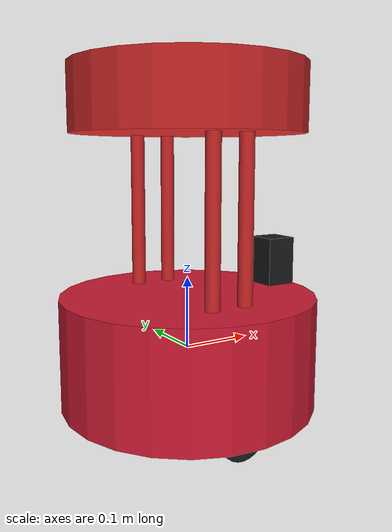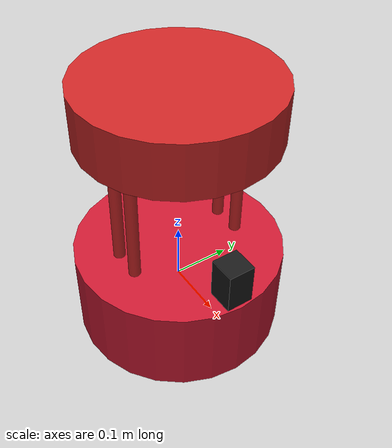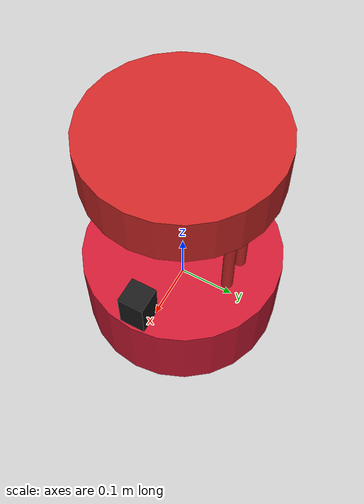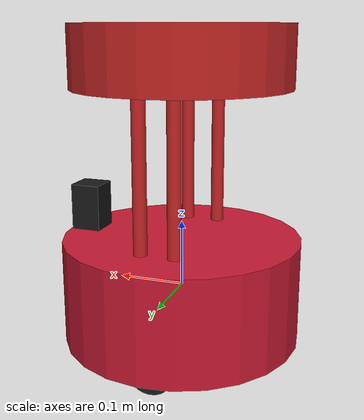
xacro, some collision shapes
<?xml version="1.0"?>
<robot xmlns:xacro="http://www.ros.org/wiki/xacro" name="barista_bot">

  <xacro:arg name="r_n" default="barista_bot"/>
  <xacro:property name="robot_name" value="$(arg r_n)"/>
  <xacro:property name="morty" value="morty"/>

  <xacro:include filename="$(find barista_robot_description)/xacro/standoff.xacro"/>
  <xacro:include filename="$(find barista_robot_description)/xacro/cup_holder_tray.xacro"/>
  <xacro:include filename="$(find barista_robot_description)/xacro/wheel.xacro"/>
  <xacro:include filename="$(find barista_robot_description)/xacro/caster_wheel.xacro"/>

  <xacro:property name="include_laser" value="true"/>

  <xacro:include filename="$(find barista_robot_description)/xacro/gazebo.xacro"/>

  <xacro:property name="chassis_length" value="0.155"/>
  <xacro:property name="chassis_radius" value="0.178"/>
  <xacro:property name="chassis_mass" value="5"/>

  <material name="grey">
    <color rgba="0.6 0.6 0.6 1"/>
  </material>

  <material name="black">
    <color rgba="0.1 0.1 0.1 1"/>
  </material>

  <material name="blue">
    <color rgba="0.2 0.1 0.8 1"/>
  </material>

  <material name="red">
    <color rgba="0.8 0.1 0.2 1"/>
  </material>

  <link name="base_link">
  </link>

  <joint name="base_link_joint" type="fixed">
    <origin rpy="0 0 0" xyz="0 0 0" />
    <parent link="base_link" />
    <child link="chassis" />
  </joint>

  <link name="chassis">
    <!-- body -->
    <visual>
      <origin xyz="0 0 0" rpy="0 0 0"/>
      <geometry>
        <cylinder length="${chassis_length}" radius="${chassis_radius}"/>
      </geometry>
      <xacro:if value="${robot_name == morty}">
      <material name="blue"/>
      </xacro:if>
      <xacro:unless value="${robot_name == morty}">
      <material name="red"/>
      </xacro:unless>
    </visual>

    <collision>
      <origin xyz="0 0 0" rpy="0 0 0"/>
      <geometry>
        <cylinder length="${chassis_length}" radius="${chassis_radius}"/>
      </geometry>
    </collision>

    <inertial>
      <mass value="${chassis_mass}"/>
      <origin xyz="0 0 0" rpy="0 0 0"/>
      <inertia ixx="0.16843041666666667" ixy="0" ixz="0" iyy="0.16843041666666667" iyz="0" izz="0.31683999999999996"/>
    </inertial>

    <xacro:standoff pos_x="0.025" pos_y="0.100" pos_z="0.1875"/>
    <xacro:standoff pos_x="-0.025" pos_y="0.100" pos_z="0.1875"/>
    <xacro:standoff pos_x="0.025" pos_y="-0.100" pos_z="0.1875"/>
    <xacro:standoff pos_x="-0.025" pos_y="-0.100" pos_z="0.1875"/>

    <xacro:cup_holder_tray />
  </link>

  <xacro:if value="${robot_name == morty}">
  <gazebo reference="chassis">
    <material>Gazebo/Blue</material>
  </gazebo>
  </xacro:if>
  <xacro:unless value="${robot_name == morty}">
  <gazebo reference="chassis">
    <material>Gazebo/Red</material>
  </gazebo>
  </xacro:unless>

  <xacro:caster_wheel caster_wheel_name="front_caster_wheel" side="1"/>
  <xacro:caster_wheel caster_wheel_name="back_caster_wheel" side="-1"/>

  <xacro:wheel wheel_name="left_wheel" side="1"/>
  <xacro:wheel wheel_name="right_wheel" side="-1"/>

  <xacro:if value="${include_laser}">
    <joint name="hokuyo_laser_joint" type="fixed">
      <origin xyz="0.15 0 0.0775" rpy="0 0 0"/>
      <parent link="chassis"/>
      <child link="hokuyo_laser"/>
    </joint>

    <link name="hokuyo_laser">
      <visual>
        <origin xyz="0 0 0" rpy="0 0 0"/>
        <geometry>
          <mesh filename="package://barista_robot_description/meshes/hokuyo_urg_04lx.dae" scale="1.0 1.0 1.0"/>
        </geometry>
        <material name="black"/>
      </visual>

      <collision>
        <origin xyz="0 0 0.035" rpy="0 0 0"/>
        <geometry>
          <box size="0.045 0.045 0.070"/>
        </geometry>
      </collision>

      <inertial>
        <mass value="0.01"/>
        <origin xyz="0 0 0.035" rpy="0 0 0"/>
        <inertia ixx="0.000005771" ixy="0" ixz="0" iyy="0.000005771" iyz="0" izz="0.00000338"/>
      </inertial>
    </link>

    <joint name="laser_scan_frame_joint" type="fixed">
      <origin xyz="0 0 0.06" rpy="0 0 0"/>
      <parent link="hokuyo_laser"/>
      <child link="laser_scan_frame"/>
    </joint>

    <link name="laser_scan_frame">
    </link>
  </xacro:if>

</robot>

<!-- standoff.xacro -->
<robot xmlns:xacro="http://www.ros.org/wiki/xacro" name="barista_bot">

  <xacro:macro name="standoff" params="pos_x pos_y pos_z">
    <visual>
      <origin xyz="${pos_x} ${pos_y} ${pos_z}" rpy="0 0 0"/>
      <geometry>
        <cylinder length="0.220" radius="0.010"/>
      </geometry>
    </visual>

    <collision>
      <origin xyz="${pos_x} ${pos_y} ${pos_z}" rpy="0 0 0"/>
      <geometry>
        <cylinder length="0.220" radius="0.010"/>
      </geometry>
    </collision>

    <inertial>
      <mass value="0.5"/>
      <origin xyz="${pos_x} ${pos_y} ${pos_z}" rpy="0 0 0"/>
      <inertia ixx="0.0020666666666666663" ixy="0" ixz="0" iyy="0.0020666666666666663" iyz="0" izz="0.0001"/>
    </inertial>
  </xacro:macro>
</robot>

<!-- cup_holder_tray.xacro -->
<robot xmlns:xacro="http://www.ros.org/wiki/xacro" name="barista_bot">

  <xacro:macro name="cup_holder_tray">
    <!-- cup holder tray-->
    <visual>
      <origin xyz="0 0 0.3425" rpy="0 0 0"/>
      <geometry>
        <cylinder length="0.090" radius="0.160"/>
      </geometry>
    </visual>

    <collision>
      <origin xyz="0 0 0.3425" rpy="0 0 0"/>
      <geometry>
        <cylinder length="0.090" radius="0.160"/>
      </geometry>
    </collision>

    <inertial>
      <mass value="1"/>
      <origin xyz="0 0 0.3425" rpy="0 0 0"/>
      <inertia ixx="0.026275" ixy="0" ixz="0" iyy="0.026275" iyz="0" izz="0.0512"/>
    </inertial>
  </xacro:macro>
</robot>

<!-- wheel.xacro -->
<robot xmlns:xacro="http://www.ros.org/wiki/xacro" name="barista_bot">

  <!-- macro for wheel -->
  <xacro:macro name="wheel" params="wheel_name ref_frame:=chassis side">
  <!-- params:
    "wheel_name" is the name of the link
    "ref_frame" reference frame for the joint
    "side" 1 for left wheel, -1 for right wheel -->

    <joint name="${wheel_name}_joint" type="continuous">
      <origin xyz="0 ${side * 0.125} -0.0775" rpy="0 0 0"/>
      <parent link="${ref_frame}"/>
      <child link="${wheel_name}"/>
      <axis xyz="0 1 0" />
      <limit effort="1000.0" velocity="100.0" />
      <dynamics damping="0.0" friction="0.1"/>
    </joint>

    <link name="${wheel_name}">
      <visual>
        <origin xyz="0 0 0" rpy="0 1.5707 1.5707"/>
        <geometry>
          <cylinder length="0.0206" radius="0.0352"/>
        </geometry>
        <material name="black"/>
      </visual>

      <collision>
        <origin xyz="0 0 0" rpy="0 1.5707 1.5707"/>
        <geometry>
          <cylinder length="0.0206" radius="0.0352"/>
        </geometry>
      </collision>

      <inertial>
        <mass value="0.5"/>
        <origin xyz="0 0 0" rpy="0 1.5707 1.5707"/>
        <inertia ixx="0.00017256166666666667" ixy="0" ixz="0" iyy="0.00017256166666666667" iyz="0" izz="0.00030976"/>
      </inertial>
    </link>

    <gazebo reference="${wheel_name}">
      <kp>1000000000000000000000000000.0</kp>
      <kd>1000000000000000000000000000.0</kd>
      <mu1>10.0</mu1>
      <mu2>10.0</mu2>
      <material>Gazebo/Black</material>
    </gazebo>
  </xacro:macro>
</robot>

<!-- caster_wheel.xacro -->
<robot xmlns:xacro="http://www.ros.org/wiki/xacro" name="barista_bot">

  <!-- macro for wheel -->
  <xacro:macro name="caster_wheel" params="caster_wheel_name side">
  <!-- params:
    "caster_wheel_name" is the name of the link
    "side" 1 for front caster wheel, -1 for back caster wheel -->

    <joint name="${caster_wheel_name}_joint" type="fixed">
      <origin xyz="${side * 0.125} 0 -0.0775" rpy="0 0 0"/>
      <parent link="chassis"/>
      <child link="${caster_wheel_name}"/>
    </joint>

    <link name="${caster_wheel_name}">
    <visual>
      <origin xyz="0 0 0" rpy="0 0 0"/>
      <geometry>
        <sphere radius="0.0352"/>
      </geometry>
      <material name="grey"/>
    </visual>

    <collision>
      <origin xyz="0 0 0" rpy="0 0 0"/>
      <geometry>
        <sphere radius="0.0352"/>
      </geometry>
    </collision>

    <inertial>
      <mass value="0.05"/>
      <origin xyz="0 0 0" rpy="0 0 0"/>
      <inertia ixx="0.00002478" ixy="0" ixz="0" iyy="0.00002478" iyz="0" izz="0.00002478"/>
    </inertial>
  </link>

  <gazebo reference="${caster_wheel_name}">
    <kp>1000000000000000000000000000.0</kp>
    <kd>1000000000000000000000000000.0</kd>
    <mu1>0.1</mu1>
    <mu2>0.1</mu2>
    <material>Gazebo/Grey</material>
  </gazebo>

  </xacro:macro>
</robot>
